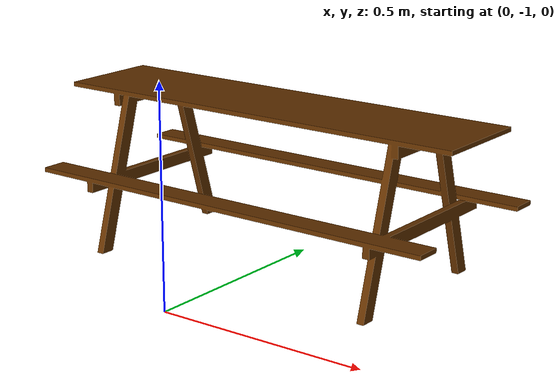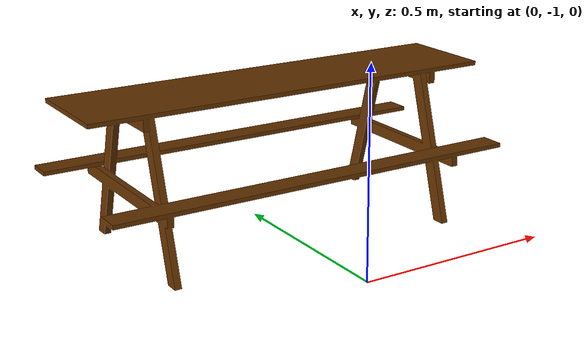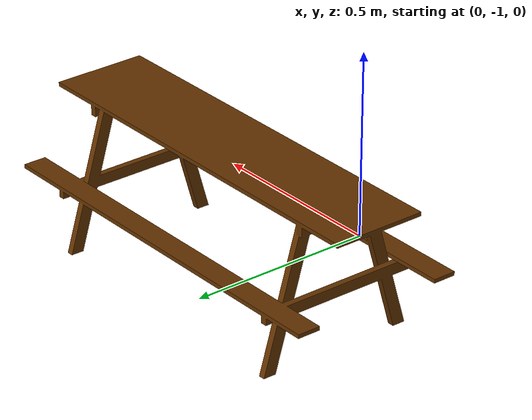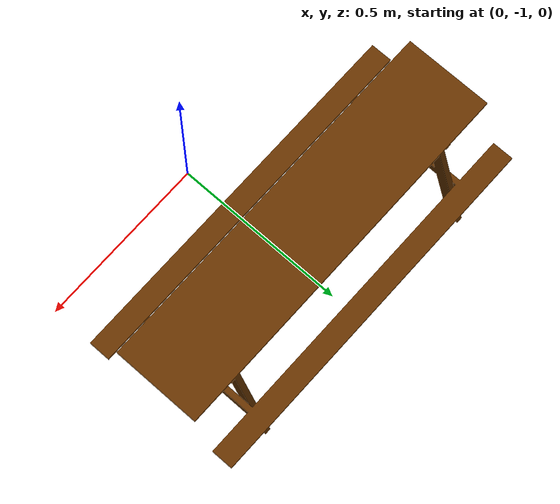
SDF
<?xml version="1.0" ?>
<sdf version='1.5'>
  <model name='picnic_table'>
    <static>true</static>
      <link name='picnic_table'>
        <pose frame=''>0 -0.6 0 1.5708 0 1.5708</pose>
         <collision name='picnic_table'>
          <geometry>
            <mesh>
              <uri>package://RoboticRecycling/models/picnic_table/garden_table.obj</uri>
            </mesh>
          </geometry>
        </collision>
        <visual name='picnic_table'>
          <geometry>
            <mesh>
              <scale>0.35 0.35 0.35</scale>
              <uri>package://RoboticRecycling/models/picnic_table/garden_table.obj</uri>
            </mesh>
          </geometry>
          <material>
            <ambient>0.4 0.2 0 0.8</ambient>
            <diffuse>0.4 0.2 0 1</diffuse>
            <specular>0 0 0 0</specular>
            <emissive>0 0 0 1</emissive>
          </material>
        </visual>
      </link>
  </model>
</sdf>
